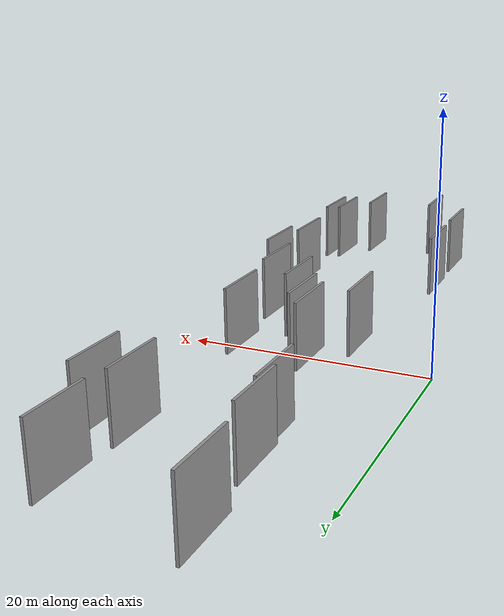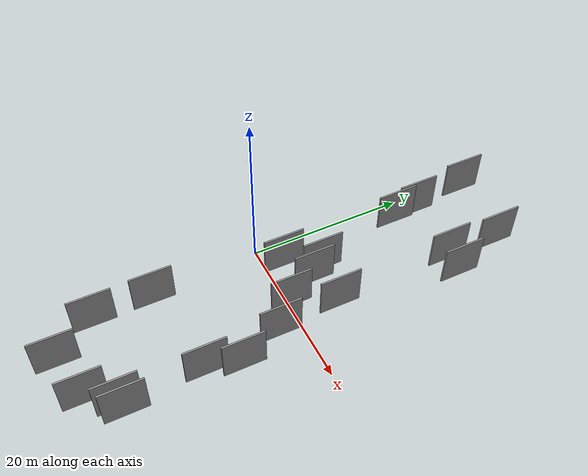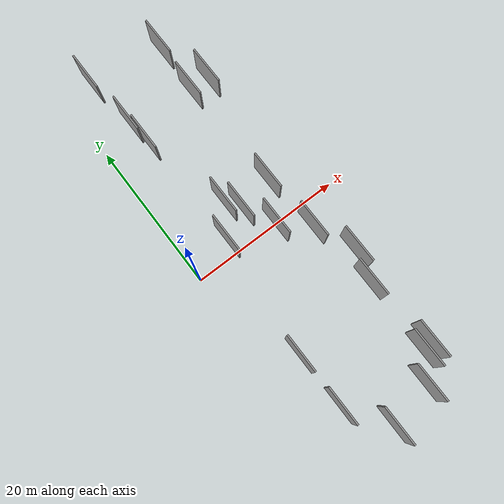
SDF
<sdf version="1.6">
 <world name="default">
  <scene>
   <sky><clouds><speed>12</speed></clouds></sky>
   <ambient>0.4 0.4 0.4 1</ambient>
   <background>0.7 0.7 0.7 1</background>
   <shadows>1</shadows>
  </scene>
  <gravity>0 0 -9.8066</gravity>
  <magnetic_field>6e-06 2.3e-05 -4.2e-05</magnetic_field>
  <physics default="0" name="default_physics" type="ode">
   <ode>
    <solver>
     <type>quick</type>
     <iters>10</iters>
     <sor>1.0</sor>
     <use_dynamic_moi_rescaling>0</use_dynamic_moi_rescaling>
    </solver>
    <constraints>
     <cfm>0</cfm>
     <erp>0.2</erp>
     <contact_max_correcting_vel>100</contact_max_correcting_vel>
     <contact_surface_layer>0.001</contact_surface_layer>
    </constraints>
   </ode>
   <max_step_size>0.004</max_step_size>
   <real_time_factor>1</real_time_factor>
   <real_time_update_rate>250</real_time_update_rate>
  </physics>
  <light name="sun" type="directional">
   <pose>0 0 10 0 0 0</pose>
   <diffuse>0.8 0.8 0.8 1</diffuse>
   <specular>0.2 0.2 0.2 1</specular>
   <attenuation>
    <range>1000</range>
    <constant>0.9</constant>
    <linear>0.01</linear>
    <quadratic>0.001</quadratic>
   </attenuation>
   <direction>-0.5 0.1 -0.9</direction>
  </light>
  <model name="grey_wall_1">
   <static>1</static>
   <pose>11.0139 -0.4642 2.5 0.000000 0.000000 1.570796</pose>
   <link name="link">
    <pose>0 0 2.50 0 0 0</pose>
    <collision name="collision"><geometry><box><size>5.00 0.2 5.00</size></box></geometry></collision>
    <visual name="visual">
     <cast_shadows>0</cast_shadows>
     <geometry><box><size>5.00 0.2 5.00</size></box></geometry>
     <material>
      <script>
       <uri>model://grey_wall/materials/scripts</uri>
       <uri>model://grey_wall/materials/textures</uri>
       <name>vrc/grey_wall</name>
      </script>
     </material>
    </visual>
   </link>
  </model>
  <model name="grey_wall_2">
   <static>1</static>
   <pose>14.2212 -3.3011 2.5 0.000000 0.000000 1.570796</pose>
   <link name="link">
    <pose>0 0 2.50 0 0 0</pose>
    <collision name="collision"><geometry><box><size>5.00 0.2 5.00</size></box></geometry></collision>
    <visual name="visual">
     <cast_shadows>0</cast_shadows>
     <geometry><box><size>5.00 0.2 5.00</size></box></geometry>
     <material>
      <script>
       <uri>model://grey_wall/materials/scripts</uri>
       <uri>model://grey_wall/materials/textures</uri>
       <name>vrc/grey_wall</name>
      </script>
     </material>
    </visual>
   </link>
  </model>
  <model name="grey_wall_3">
   <static>1</static>
   <pose>3.6842 27.2978 2.5 0.000000 0.000000 1.570796</pose>
   <link name="link">
    <pose>0 0 2.50 0 0 0</pose>
    <collision name="collision"><geometry><box><size>5.00 0.2 5.00</size></box></geometry></collision>
    <visual name="visual">
     <cast_shadows>0</cast_shadows>
     <geometry><box><size>5.00 0.2 5.00</size></box></geometry>
     <material>
      <script>
       <uri>model://grey_wall/materials/scripts</uri>
       <uri>model://grey_wall/materials/textures</uri>
       <name>vrc/grey_wall</name>
      </script>
     </material>
    </visual>
   </link>
  </model>
  <model name="grey_wall_4">
   <static>1</static>
   <pose>13.4895 4.4041 2.5 0.000000 0.000000 1.570796</pose>
   <link name="link">
    <pose>0 0 2.50 0 0 0</pose>
    <collision name="collision"><geometry><box><size>5.00 0.2 5.00</size></box></geometry></collision>
    <visual name="visual">
     <cast_shadows>0</cast_shadows>
     <geometry><box><size>5.00 0.2 5.00</size></box></geometry>
     <material>
      <script>
       <uri>model://grey_wall/materials/scripts</uri>
       <uri>model://grey_wall/materials/textures</uri>
       <name>vrc/grey_wall</name>
      </script>
     </material>
    </visual>
   </link>
  </model>
  <model name="grey_wall_5">
   <static>1</static>
   <pose>7.6783 5.2277 2.5 0.000000 0.000000 1.570796</pose>
   <link name="link">
    <pose>0 0 2.50 0 0 0</pose>
    <collision name="collision"><geometry><box><size>5.00 0.2 5.00</size></box></geometry></collision>
    <visual name="visual">
     <cast_shadows>0</cast_shadows>
     <geometry><box><size>5.00 0.2 5.00</size></box></geometry>
     <material>
      <script>
       <uri>model://grey_wall/materials/scripts</uri>
       <uri>model://grey_wall/materials/textures</uri>
       <name>vrc/grey_wall</name>
      </script>
     </material>
    </visual>
   </link>
  </model>
  <model name="grey_wall_6">
   <static>1</static>
   <pose>15.6230 19.2049 2.5 0.000000 0.000000 1.570796</pose>
   <link name="link">
    <pose>0 0 2.50 0 0 0</pose>
    <collision name="collision"><geometry><box><size>5.00 0.2 5.00</size></box></geometry></collision>
    <visual name="visual">
     <cast_shadows>0</cast_shadows>
     <geometry><box><size>5.00 0.2 5.00</size></box></geometry>
     <material>
      <script>
       <uri>model://grey_wall/materials/scripts</uri>
       <uri>model://grey_wall/materials/textures</uri>
       <name>vrc/grey_wall</name>
      </script>
     </material>
    </visual>
   </link>
  </model>
  <model name="grey_wall_7">
   <static>1</static>
   <pose>15.1578 -22.1963 2.5 0.000000 0.000000 1.570796</pose>
   <link name="link">
    <pose>0 0 2.50 0 0 0</pose>
    <collision name="collision"><geometry><box><size>5.00 0.2 5.00</size></box></geometry></collision>
    <visual name="visual">
     <cast_shadows>0</cast_shadows>
     <geometry><box><size>5.00 0.2 5.00</size></box></geometry>
     <material>
      <script>
       <uri>model://grey_wall/materials/scripts</uri>
       <uri>model://grey_wall/materials/textures</uri>
       <name>vrc/grey_wall</name>
      </script>
     </material>
    </visual>
   </link>
  </model>
  <model name="grey_wall_8">
   <static>1</static>
   <pose>7.2975 -26.5149 2.5 0.000000 0.000000 1.570796</pose>
   <link name="link">
    <pose>0 0 2.50 0 0 0</pose>
    <collision name="collision"><geometry><box><size>5.00 0.2 5.00</size></box></geometry></collision>
    <visual name="visual">
     <cast_shadows>0</cast_shadows>
     <geometry><box><size>5.00 0.2 5.00</size></box></geometry>
     <material>
      <script>
       <uri>model://grey_wall/materials/scripts</uri>
       <uri>model://grey_wall/materials/textures</uri>
       <name>vrc/grey_wall</name>
      </script>
     </material>
    </visual>
   </link>
  </model>
  <model name="grey_wall_9">
   <static>1</static>
   <pose>12.9464 19.2431 2.5 0.000000 0.000000 1.570796</pose>
   <link name="link">
    <pose>0 0 2.50 0 0 0</pose>
    <collision name="collision"><geometry><box><size>5.00 0.2 5.00</size></box></geometry></collision>
    <visual name="visual">
     <cast_shadows>0</cast_shadows>
     <geometry><box><size>5.00 0.2 5.00</size></box></geometry>
     <material>
      <script>
       <uri>model://grey_wall/materials/scripts</uri>
       <uri>model://grey_wall/materials/textures</uri>
       <name>vrc/grey_wall</name>
      </script>
     </material>
    </visual>
   </link>
  </model>
  <model name="grey_wall_10">
   <static>1</static>
   <pose>3.6984 -14.2446 2.5 0.000000 0.000000 1.570796</pose>
   <link name="link">
    <pose>0 0 2.50 0 0 0</pose>
    <collision name="collision"><geometry><box><size>5.00 0.2 5.00</size></box></geometry></collision>
    <visual name="visual">
     <cast_shadows>0</cast_shadows>
     <geometry><box><size>5.00 0.2 5.00</size></box></geometry>
     <material>
      <script>
       <uri>model://grey_wall/materials/scripts</uri>
       <uri>model://grey_wall/materials/textures</uri>
       <name>vrc/grey_wall</name>
      </script>
     </material>
    </visual>
   </link>
  </model>
  <model name="grey_wall_11">
   <static>1</static>
   <pose>16.3022 -21.8355 2.5 0.000000 0.000000 1.570796</pose>
   <link name="link">
    <pose>0 0 2.50 0 0 0</pose>
    <collision name="collision"><geometry><box><size>5.00 0.2 5.00</size></box></geometry></collision>
    <visual name="visual">
     <cast_shadows>0</cast_shadows>
     <geometry><box><size>5.00 0.2 5.00</size></box></geometry>
     <material>
      <script>
       <uri>model://grey_wall/materials/scripts</uri>
       <uri>model://grey_wall/materials/textures</uri>
       <name>vrc/grey_wall</name>
      </script>
     </material>
    </visual>
   </link>
  </model>
  <model name="grey_wall_12">
   <static>1</static>
   <pose>16.4116 -8.6584 2.5 0.000000 0.000000 1.570796</pose>
   <link name="link">
    <pose>0 0 2.50 0 0 0</pose>
    <collision name="collision"><geometry><box><size>5.00 0.2 5.00</size></box></geometry></collision>
    <visual name="visual">
     <cast_shadows>0</cast_shadows>
     <geometry><box><size>5.00 0.2 5.00</size></box></geometry>
     <material>
      <script>
       <uri>model://grey_wall/materials/scripts</uri>
       <uri>model://grey_wall/materials/textures</uri>
       <name>vrc/grey_wall</name>
      </script>
     </material>
    </visual>
   </link>
  </model>
  <model name="grey_wall_13">
   <static>1</static>
   <pose>15.3263 -12.5423 2.5 0.000000 0.000000 1.570796</pose>
   <link name="link">
    <pose>0 0 2.50 0 0 0</pose>
    <collision name="collision"><geometry><box><size>5.00 0.2 5.00</size></box></geometry></collision>
    <visual name="visual">
     <cast_shadows>0</cast_shadows>
     <geometry><box><size>5.00 0.2 5.00</size></box></geometry>
     <material>
      <script>
       <uri>model://grey_wall/materials/scripts</uri>
       <uri>model://grey_wall/materials/textures</uri>
       <name>vrc/grey_wall</name>
      </script>
     </material>
    </visual>
   </link>
  </model>
  <model name="grey_wall_14">
   <static>1</static>
   <pose>13.0023 -25.2159 2.5 0.000000 0.000000 1.570796</pose>
   <link name="link">
    <pose>0 0 2.50 0 0 0</pose>
    <collision name="collision"><geometry><box><size>5.00 0.2 5.00</size></box></geometry></collision>
    <visual name="visual">
     <cast_shadows>0</cast_shadows>
     <geometry><box><size>5.00 0.2 5.00</size></box></geometry>
     <material>
      <script>
       <uri>model://grey_wall/materials/scripts</uri>
       <uri>model://grey_wall/materials/textures</uri>
       <name>vrc/grey_wall</name>
      </script>
     </material>
    </visual>
   </link>
  </model>
  <model name="grey_wall_15">
   <static>1</static>
   <pose>4.5015 20.1035 2.5 0.000000 0.000000 1.570796</pose>
   <link name="link">
    <pose>0 0 2.50 0 0 0</pose>
    <collision name="collision"><geometry><box><size>5.00 0.2 5.00</size></box></geometry></collision>
    <visual name="visual">
     <cast_shadows>0</cast_shadows>
     <geometry><box><size>5.00 0.2 5.00</size></box></geometry>
     <material>
      <script>
       <uri>model://grey_wall/materials/scripts</uri>
       <uri>model://grey_wall/materials/textures</uri>
       <name>vrc/grey_wall</name>
      </script>
     </material>
    </visual>
   </link>
  </model>
  <model name="grey_wall_16">
   <static>1</static>
   <pose>8.9399 3.5014 2.5 0.000000 0.000000 1.570796</pose>
   <link name="link">
    <pose>0 0 2.50 0 0 0</pose>
    <collision name="collision"><geometry><box><size>5.00 0.2 5.00</size></box></geometry></collision>
    <visual name="visual">
     <cast_shadows>0</cast_shadows>
     <geometry><box><size>5.00 0.2 5.00</size></box></geometry>
     <material>
      <script>
       <uri>model://grey_wall/materials/scripts</uri>
       <uri>model://grey_wall/materials/textures</uri>
       <name>vrc/grey_wall</name>
      </script>
     </material>
    </visual>
   </link>
  </model>
  <model name="grey_wall_17">
   <static>1</static>
   <pose>13.2581 25.8094 2.5 0.000000 0.000000 1.570796</pose>
   <link name="link">
    <pose>0 0 2.50 0 0 0</pose>
    <collision name="collision"><geometry><box><size>5.00 0.2 5.00</size></box></geometry></collision>
    <visual name="visual">
     <cast_shadows>0</cast_shadows>
     <geometry><box><size>5.00 0.2 5.00</size></box></geometry>
     <material>
      <script>
       <uri>model://grey_wall/materials/scripts</uri>
       <uri>model://grey_wall/materials/textures</uri>
       <name>vrc/grey_wall</name>
      </script>
     </material>
    </visual>
   </link>
  </model>
  <model name="grey_wall_18">
   <static>1</static>
   <pose>3.8279 -21.3043 2.5 0.000000 0.000000 1.570796</pose>
   <link name="link">
    <pose>0 0 2.50 0 0 0</pose>
    <collision name="collision"><geometry><box><size>5.00 0.2 5.00</size></box></geometry></collision>
    <visual name="visual">
     <cast_shadows>0</cast_shadows>
     <geometry><box><size>5.00 0.2 5.00</size></box></geometry>
     <material>
      <script>
       <uri>model://grey_wall/materials/scripts</uri>
       <uri>model://grey_wall/materials/textures</uri>
       <name>vrc/grey_wall</name>
      </script>
     </material>
    </visual>
   </link>
  </model>
  <model name="grey_wall_19">
   <static>1</static>
   <pose>4.8312 16.9523 2.5 0.000000 0.000000 1.570796</pose>
   <link name="link">
    <pose>0 0 2.50 0 0 0</pose>
    <collision name="collision"><geometry><box><size>5.00 0.2 5.00</size></box></geometry></collision>
    <visual name="visual">
     <cast_shadows>0</cast_shadows>
     <geometry><box><size>5.00 0.2 5.00</size></box></geometry>
     <material>
      <script>
       <uri>model://grey_wall/materials/scripts</uri>
       <uri>model://grey_wall/materials/textures</uri>
       <name>vrc/grey_wall</name>
      </script>
     </material>
    </visual>
   </link>
  </model>
  <model name="grey_wall_20">
   <static>1</static>
   <pose>5.2424 1.4297 2.5 0.000000 0.000000 1.570796</pose>
   <link name="link">
    <pose>0 0 2.50 0 0 0</pose>
    <collision name="collision"><geometry><box><size>5.00 0.2 5.00</size></box></geometry></collision>
    <visual name="visual">
     <cast_shadows>0</cast_shadows>
     <geometry><box><size>5.00 0.2 5.00</size></box></geometry>
     <material>
      <script>
       <uri>model://grey_wall/materials/scripts</uri>
       <uri>model://grey_wall/materials/textures</uri>
       <name>vrc/grey_wall</name>
      </script>
     </material>
    </visual>
   </link>
  </model>
 </world>
</sdf>
